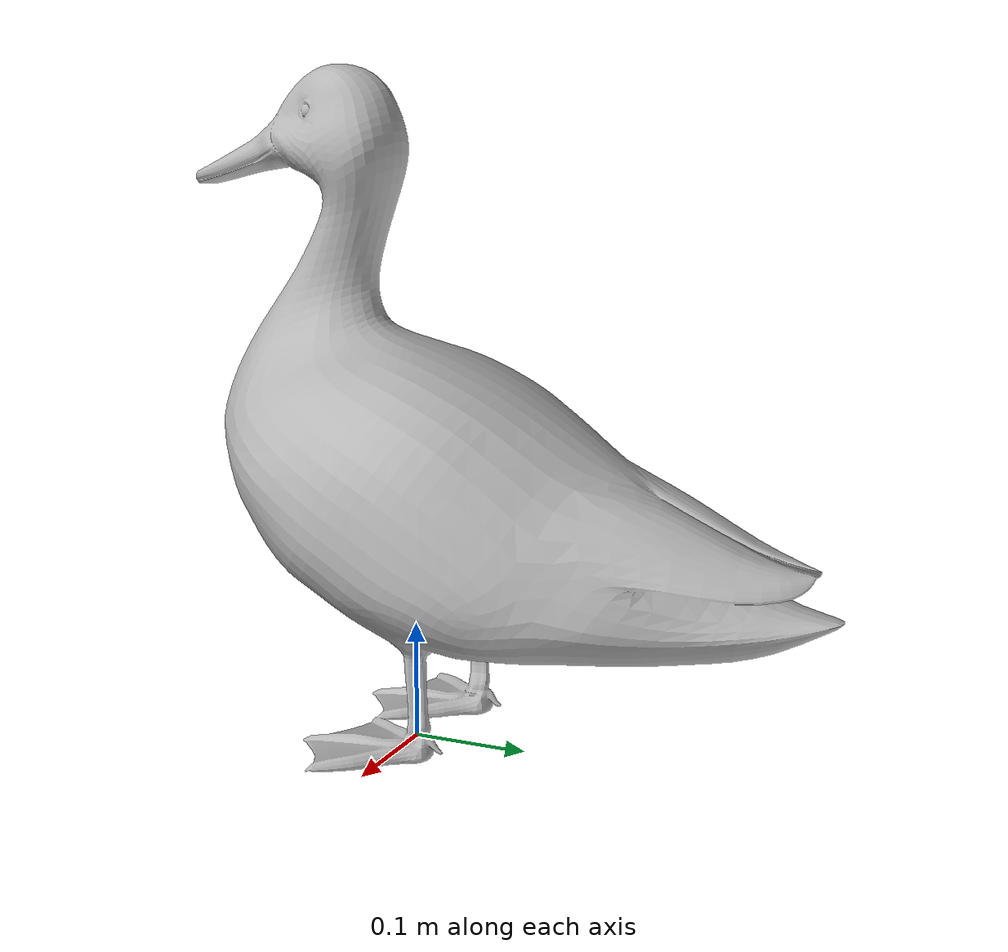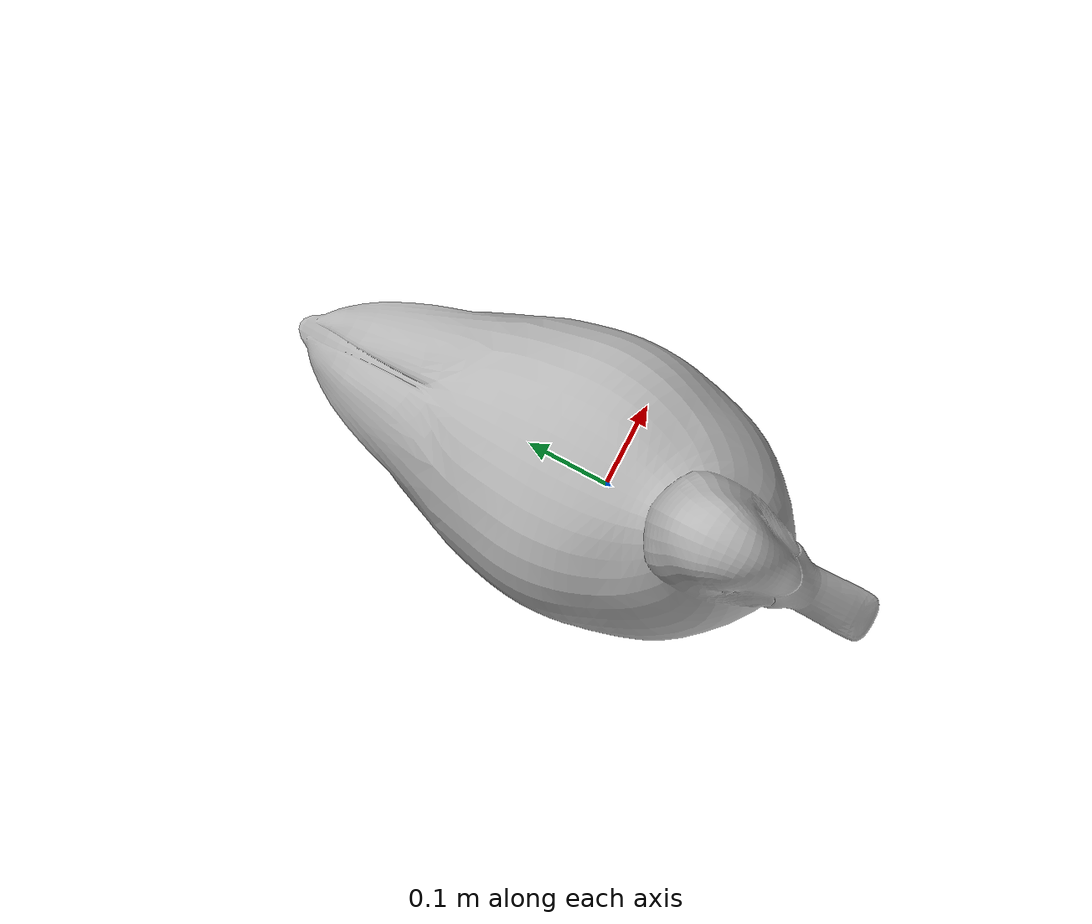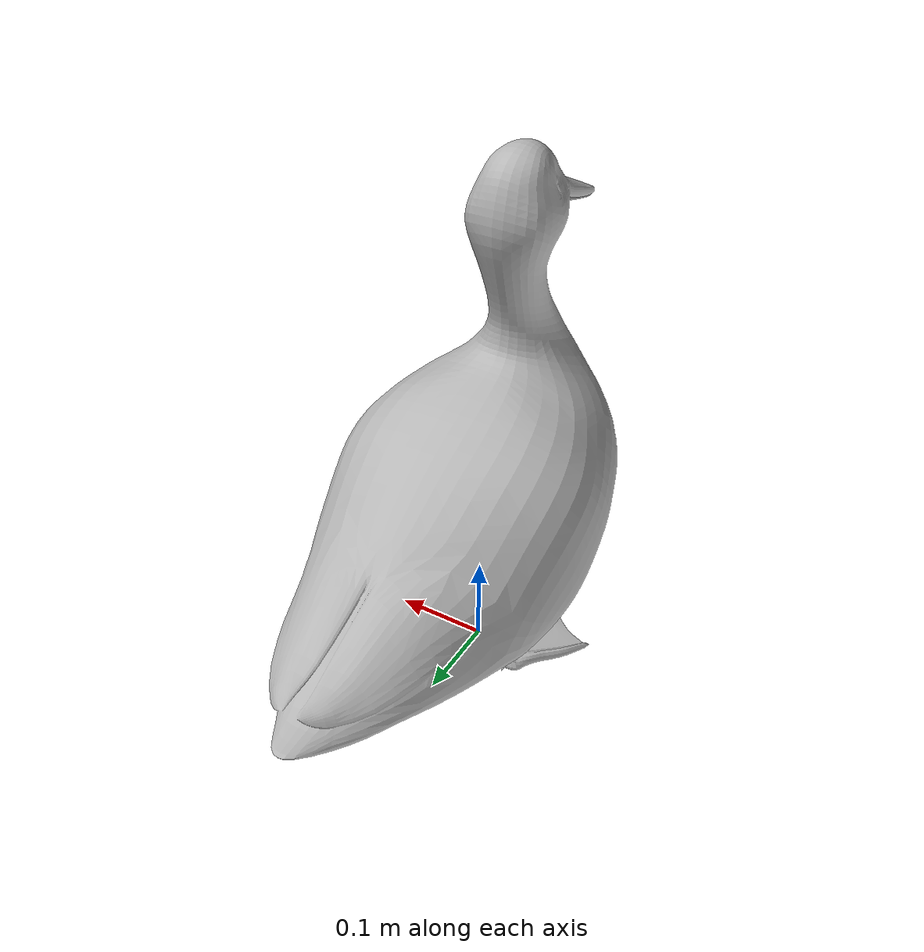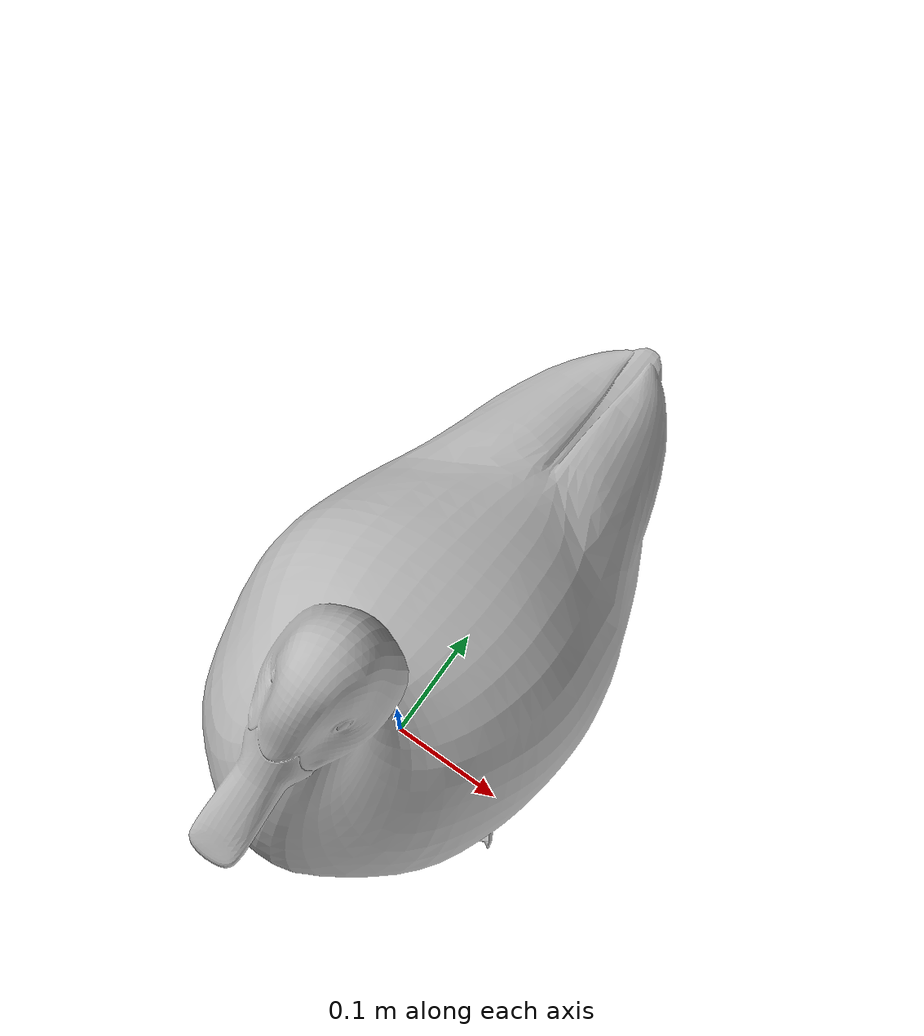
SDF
<?xml version="1.0" ?>
<sdf version="1.6">
  <model name="duckv1">
    <static>true</static>
    <link name="duck_link">

      <!-- Visual representation -->
      <visual name="duck_visual">
        <geometry>
          <mesh>
            <uri>package://41068_ignition_bringup/models/Animal_Models/duck/meshes/duckv1/duckv1.obj</uri>
            <scale>0.01 0.01 0.01</scale>
          </mesh>
        </geometry>
      </visual>

      <!-- Collision geometry -->
      <collision name="duck_collision">
        <geometry>
          <mesh>
            <uri>package://41068_ignition_bringup/models/Animal_Models/duck/meshes/duckv1/duckv1.obj</uri>
            <scale>0.01 0.001 0.001</scale>
          </mesh>
        </geometry>
      </collision>

    </link>
  </model>
</sdf>
